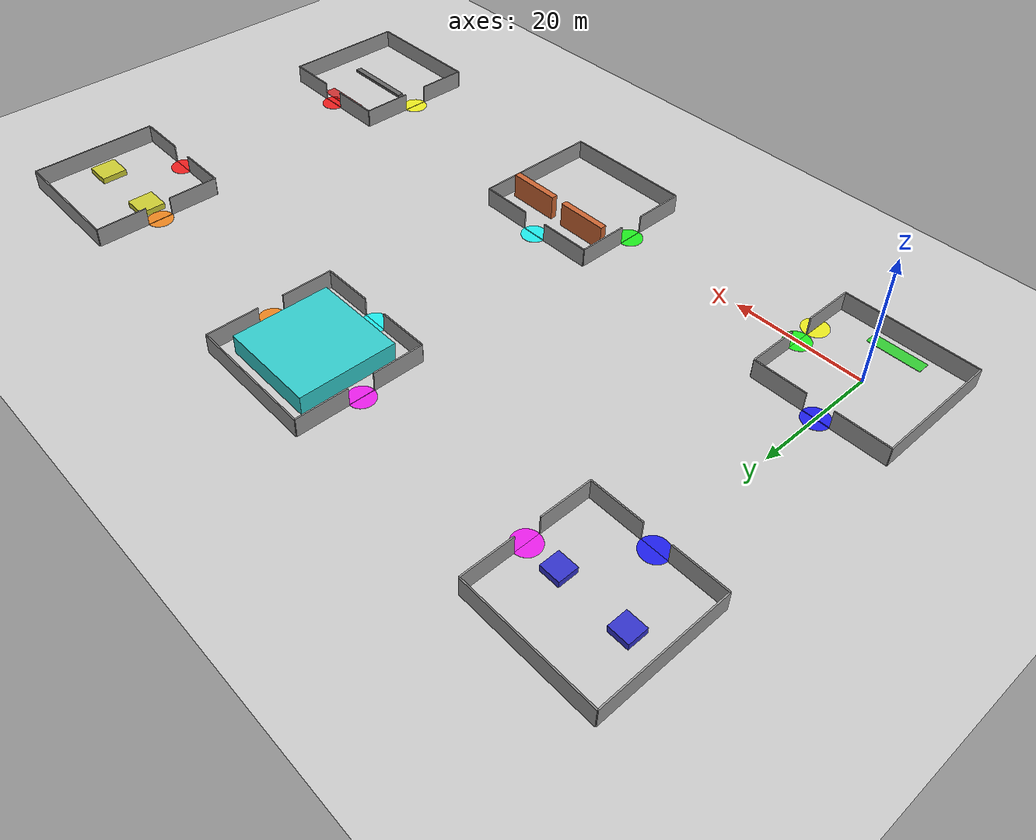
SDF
<?xml version="1.0" ?>
<sdf version="1.6">
  <world name="warehouse_distributed">
    <!-- Lighting -->
    <include>
      <uri>model://sun</uri>
    </include>

    <!-- Ground plane -->
    <include>
      <uri>model://ground_plane</uri>
    </include>

    <!-- Warehouse Room A - Receiving Area (0, 0) -->
    <model name="warehouse_room_a">
      <static>true</static>
      <pose>0 0 0 0 0 0</pose>
      <link name="floor">
        <collision name="floor_collision">
          <geometry>
            <box>
              <size>20 20 0.1</size>
            </box>
          </geometry>
        </collision>
        <visual name="floor_visual">
          <geometry>
            <box>
              <size>20 20 0.1</size>
            </box>
          </geometry>
          <material>
            <ambient>0.8 0.8 0.8 1</ambient>
            <diffuse>0.8 0.8 0.8 1</diffuse>
          </material>
        </visual>
      </link>

      <!-- Walls with gaps for wormholes -->
      <link name="wall_north_left">
        <collision name="wall_north_left_collision">
          <geometry>
            <box>
              <size>8 0.2 3</size>
            </box>
          </geometry>
        </collision>
        <visual name="wall_north_left_visual">
          <geometry>
            <box>
              <size>8 0.2 3</size>
            </box>
          </geometry>
          <material>
            <ambient>0.6 0.6 0.6 1</ambient>
            <diffuse>0.6 0.6 0.6 1</diffuse>
          </material>
        </visual>
        <pose>-6 10 1.5 0 0 0</pose>
      </link>

      <link name="wall_north_right">
        <collision name="wall_north_right_collision">
          <geometry>
            <box>
              <size>8 0.2 3</size>
            </box>
          </geometry>
        </collision>
        <visual name="wall_north_right_visual">
          <geometry>
            <box>
              <size>8 0.2 3</size>
            </box>
          </geometry>
          <material>
            <ambient>0.6 0.6 0.6 1</ambient>
            <diffuse>0.6 0.6 0.6 1</diffuse>
          </material>
        </visual>
        <pose>6 10 1.5 0 0 0</pose>
      </link>

      <link name="wall_south">
        <collision name="wall_south_collision">
          <geometry>
            <box>
              <size>20 0.2 3</size>
            </box>
          </geometry>
        </collision>
        <visual name="wall_south_visual">
          <geometry>
            <box>
              <size>20 0.2 3</size>
            </box>
          </geometry>
          <material>
            <ambient>0.6 0.6 0.6 1</ambient>
            <diffuse>0.6 0.6 0.6 1</diffuse>
          </material>
        </visual>
        <pose>0 -10 1.5 0 0 0</pose>
      </link>

      <link name="wall_east_top">
        <collision name="wall_east_top_collision">
          <geometry>
            <box>
              <size>0.2 8 3</size>
            </box>
          </geometry>
        </collision>
        <visual name="wall_east_top_visual">
          <geometry>
            <box>
              <size>0.2 8 3</size>
            </box>
          </geometry>
          <material>
            <ambient>0.6 0.6 0.6 1</ambient>
            <diffuse>0.6 0.6 0.6 1</diffuse>
          </material>
        </visual>
        <pose>10 6 1.5 0 0 0</pose>
      </link>

      <link name="wall_east_bottom">
        <collision name="wall_east_bottom_collision">
          <geometry>
            <box>
              <size>0.2 8 3</size>
            </box>
          </geometry>
        </collision>
        <visual name="wall_east_bottom_visual">
          <geometry>
            <box>
              <size>0.2 8 3</size>
            </box>
          </geometry>
          <material>
            <ambient>0.6 0.6 0.6 1</ambient>
            <diffuse>0.6 0.6 0.6 1</diffuse>
          </material>
        </visual>
        <pose>10 -6 1.5 0 0 0</pose>
      </link>

      <link name="wall_west">
        <collision name="wall_west_collision">
          <geometry>
            <box>
              <size>0.2 20 3</size>
            </box>
          </geometry>
        </collision>
        <visual name="wall_west_visual">
          <geometry>
            <box>
              <size>0.2 20 3</size>
            </box>
          </geometry>
          <material>
            <ambient>0.6 0.6 0.6 1</ambient>
            <diffuse>0.6 0.6 0.6 1</diffuse>
          </material>
        </visual>
        <pose>-10 0 1.5 0 0 0</pose>
      </link>

      <!-- Receiving dock -->
      <link name="receiving_dock">
        <collision name="receiving_dock_collision">
          <geometry>
            <box>
              <size>8 2 0.1</size>
            </box>
          </geometry>
        </collision>
        <visual name="receiving_dock_visual">
          <geometry>
            <box>
              <size>8 2 0.1</size>
            </box>
          </geometry>
          <material>
            <ambient>0.2 0.8 0.2 1</ambient>
            <diffuse>0.2 0.8 0.2 1</diffuse>
          </material>
        </visual>
        <pose>0 -8 0.05 0 0 0</pose>
      </link>
    </model>

    <!-- Warehouse Room B - Storage Area 1 (50, 0) -->
    <model name="warehouse_room_b">
      <static>true</static>
      <pose>50 0 0 0 0 0</pose>
      <link name="floor">
        <collision name="floor_collision">
          <geometry>
            <box>
              <size>20 20 0.1</size>
            </box>
          </geometry>
        </collision>
        <visual name="floor_visual">
          <geometry>
            <box>
              <size>20 20 0.1</size>
            </box>
          </geometry>
          <material>
            <ambient>0.8 0.8 0.8 1</ambient>
            <diffuse>0.8 0.8 0.8 1</diffuse>
          </material>
        </visual>
      </link>

      <!-- Walls with gaps for wormholes -->
      <link name="wall_north_left">
        <collision name="wall_north_left_collision">
          <geometry>
            <box>
              <size>8 0.2 3</size>
            </box>
          </geometry>
        </collision>
        <visual name="wall_north_left_visual">
          <geometry>
            <box>
              <size>8 0.2 3</size>
            </box>
          </geometry>
          <material>
            <ambient>0.6 0.6 0.6 1</ambient>
            <diffuse>0.6 0.6 0.6 1</diffuse>
          </material>
        </visual>
        <pose>-6 10 1.5 0 0 0</pose>
      </link>

      <link name="wall_north_right">
        <collision name="wall_north_right_collision">
          <geometry>
            <box>
              <size>8 0.2 3</size>
            </box>
          </geometry>
        </collision>
        <visual name="wall_north_right_visual">
          <geometry>
            <box>
              <size>8 0.2 3</size>
            </box>
          </geometry>
          <material>
            <ambient>0.6 0.6 0.6 1</ambient>
            <diffuse>0.6 0.6 0.6 1</diffuse>
          </material>
        </visual>
        <pose>6 10 1.5 0 0 0</pose>
      </link>

      <link name="wall_south">
        <collision name="wall_south_collision">
          <geometry>
            <box>
              <size>20 0.2 3</size>
            </box>
          </geometry>
        </collision>
        <visual name="wall_south_visual">
          <geometry>
            <box>
              <size>20 0.2 3</size>
            </box>
          </geometry>
          <material>
            <ambient>0.6 0.6 0.6 1</ambient>
            <diffuse>0.6 0.6 0.6 1</diffuse>
          </material>
        </visual>
        <pose>0 -10 1.5 0 0 0</pose>
      </link>

      <link name="wall_east">
        <collision name="wall_east_collision">
          <geometry>
            <box>
              <size>0.2 20 3</size>
            </box>
          </geometry>
        </collision>
        <visual name="wall_east_visual">
          <geometry>
            <box>
              <size>0.2 20 3</size>
            </box>
          </geometry>
          <material>
            <ambient>0.6 0.6 0.6 1</ambient>
            <diffuse>0.6 0.6 0.6 1</diffuse>
          </material>
        </visual>
        <pose>10 0 1.5 0 0 0</pose>
      </link>

      <link name="wall_west_top">
        <collision name="wall_west_top_collision">
          <geometry>
            <box>
              <size>0.2 8 3</size>
            </box>
          </geometry>
        </collision>
        <visual name="wall_west_top_visual">
          <geometry>
            <box>
              <size>0.2 8 3</size>
            </box>
          </geometry>
          <material>
            <ambient>0.6 0.6 0.6 1</ambient>
            <diffuse>0.6 0.6 0.6 1</diffuse>
          </material>
        </visual>
        <pose>-10 6 1.5 0 0 0</pose>
      </link>

      <link name="wall_west_bottom">
        <collision name="wall_west_bottom_collision">
          <geometry>
            <box>
              <size>0.2 8 3</size>
            </box>
          </geometry>
        </collision>
        <visual name="wall_west_bottom_visual">
          <geometry>
            <box>
              <size>0.2 8 3</size>
            </box>
          </geometry>
          <material>
            <ambient>0.6 0.6 0.6 1</ambient>
            <diffuse>0.6 0.6 0.6 1</diffuse>
          </material>
        </visual>
        <pose>-10 -6 1.5 0 0 0</pose>
      </link>

      <!-- Storage racks -->
      <link name="storage_rack_1">
        <collision name="storage_rack_1_collision">
          <geometry>
            <box>
              <size>8 1 4</size>
            </box>
          </geometry>
        </collision>
        <visual name="storage_rack_1_visual">
          <geometry>
            <box>
              <size>8 1 4</size>
            </box>
          </geometry>
          <material>
            <ambient>0.8 0.4 0.2 1</ambient>
            <diffuse>0.8 0.4 0.2 1</diffuse>
          </material>
        </visual>
        <pose>-5 5 2 0 0 0</pose>
      </link>

      <link name="storage_rack_2">
        <collision name="storage_rack_2_collision">
          <geometry>
            <box>
              <size>8 1 4</size>
            </box>
          </geometry>
        </collision>
        <visual name="storage_rack_2_visual">
          <geometry>
            <box>
              <size>8 1 4</size>
            </box>
          </geometry>
          <material>
            <ambient>0.8 0.4 0.2 1</ambient>
            <diffuse>0.8 0.4 0.2 1</diffuse>
          </material>
        </visual>
        <pose>5 5 2 0 0 0</pose>
      </link>
    </model>

    <!-- Warehouse Room C - Processing Area (0, 50) -->
    <model name="warehouse_room_c">
      <static>true</static>
      <pose>0 50 0 0 0 0</pose>
      <link name="floor">
        <collision name="floor_collision">
          <geometry>
            <box>
              <size>20 20 0.1</size>
            </box>
          </geometry>
        </collision>
        <visual name="floor_visual">
          <geometry>
            <box>
              <size>20 20 0.1</size>
            </box>
          </geometry>
          <material>
            <ambient>0.8 0.8 0.8 1</ambient>
            <diffuse>0.8 0.8 0.8 1</diffuse>
          </material>
        </visual>
      </link>

      <!-- Walls -->
      <link name="wall_north">
        <collision name="wall_north_collision">
          <geometry>
            <box>
              <size>20 0.2 3</size>
            </box>
          </geometry>
        </collision>
        <visual name="wall_north_visual">
          <geometry>
            <box>
              <size>20 0.2 3</size>
            </box>
          </geometry>
          <material>
            <ambient>0.6 0.6 0.6 1</ambient>
            <diffuse>0.6 0.6 0.6 1</diffuse>
          </material>
        </visual>
        <pose>0 10 1.5 0 0 0</pose>
      </link>

      <link name="wall_south_left">
        <collision name="wall_south_left_collision">
          <geometry>
            <box>
              <size>8 0.2 3</size>
            </box>
          </geometry>
        </collision>
        <visual name="wall_south_left_visual">
          <geometry>
            <box>
              <size>8 0.2 3</size>
            </box>
          </geometry>
          <material>
            <ambient>0.6 0.6 0.6 1</ambient>
            <diffuse>0.6 0.6 0.6 1</diffuse>
          </material>
        </visual>
        <pose>-6 -10 1.5 0 0 0</pose>
      </link>

      <link name="wall_south_right">
        <collision name="wall_south_right_collision">
          <geometry>
            <box>
              <size>8 0.2 3</size>
            </box>
          </geometry>
        </collision>
        <visual name="wall_south_right_visual">
          <geometry>
            <box>
              <size>8 0.2 3</size>
            </box>
          </geometry>
          <material>
            <ambient>0.6 0.6 0.6 1</ambient>
            <diffuse>0.6 0.6 0.6 1</diffuse>
          </material>
        </visual>
        <pose>6 -10 1.5 0 0 0</pose>
      </link>

      <link name="wall_east_top">
        <collision name="wall_east_top_collision">
          <geometry>
            <box>
              <size>0.2 8 3</size>
            </box>
          </geometry>
        </collision>
        <visual name="wall_east_top_visual">
          <geometry>
            <box>
              <size>0.2 8 3</size>
            </box>
          </geometry>
          <material>
            <ambient>0.6 0.6 0.6 1</ambient>
            <diffuse>0.6 0.6 0.6 1</diffuse>
          </material>
        </visual>
        <pose>10 6 1.5 0 0 0</pose>
      </link>

      <link name="wall_east_bottom">
        <collision name="wall_east_bottom_collision">
          <geometry>
            <box>
              <size>0.2 8 3</size>
            </box>
          </geometry>
        </collision>
        <visual name="wall_east_bottom_visual">
          <geometry>
            <box>
              <size>0.2 8 3</size>
            </box>
          </geometry>
          <material>
            <ambient>0.6 0.6 0.6 1</ambient>
            <diffuse>0.6 0.6 0.6 1</diffuse>
          </material>
        </visual>
        <pose>10 -6 1.5 0 0 0</pose>
      </link>

      <link name="wall_west">
        <collision name="wall_west_collision">
          <geometry>
            <box>
              <size>0.2 20 3</size>
            </box>
          </geometry>
        </collision>
        <visual name="wall_west_visual">
          <geometry>
            <box>
              <size>0.2 20 3</size>
            </box>
          </geometry>
          <material>
            <ambient>0.6 0.6 0.6 1</ambient>
            <diffuse>0.6 0.6 0.6 1</diffuse>
          </material>
        </visual>
        <pose>-10 0 1.5 0 0 0</pose>
      </link>

      <!-- Processing stations -->
      <link name="processing_station_1">
        <collision name="processing_station_1_collision">
          <geometry>
            <box>
              <size>3 3 1</size>
            </box>
          </geometry>
        </collision>
        <visual name="processing_station_1_visual">
          <geometry>
            <box>
              <size>3 3 1</size>
            </box>
          </geometry>
          <material>
            <ambient>0.2 0.2 0.8 1</ambient>
            <diffuse>0.2 0.2 0.8 1</diffuse>
          </material>
        </visual>
        <pose>-5 0 0.5 0 0 0</pose>
      </link>

      <link name="processing_station_2">
        <collision name="processing_station_2_collision">
          <geometry>
            <box>
              <size>3 3 1</size>
            </box>
          </geometry>
        </collision>
        <visual name="processing_station_2_visual">
          <geometry>
            <box>
              <size>3 3 1</size>
            </box>
          </geometry>
          <material>
            <ambient>0.2 0.2 0.8 1</ambient>
            <diffuse>0.2 0.2 0.8 1</diffuse>
          </material>
        </visual>
        <pose>5 0 0.5 0 0 0</pose>
      </link>
    </model>

    <!-- Warehouse Room D - Storage Area 2 (50, 50) -->
    <model name="warehouse_room_d">
      <static>true</static>
      <pose>50 50 0 0 0 0</pose>
      <link name="floor">
        <collision name="floor_collision">
          <geometry>
            <box>
              <size>20 20 0.1</size>
            </box>
          </geometry>
        </collision>
        <visual name="floor_visual">
          <geometry>
            <box>
              <size>20 20 0.1</size>
            </box>
          </geometry>
          <material>
            <ambient>0.8 0.8 0.8 1</ambient>
            <diffuse>0.8 0.8 0.8 1</diffuse>
          </material>
        </visual>
      </link>

      <!-- Walls with gaps for wormholes -->
      <link name="wall_north">
        <collision name="wall_north_collision">
          <geometry>
            <box>
              <size>20 0.2 3</size>
            </box>
          </geometry>
        </collision>
        <visual name="wall_north_visual">
          <geometry>
            <box>
              <size>20 0.2 3</size>
            </box>
          </geometry>
          <material>
            <ambient>0.6 0.6 0.6 1</ambient>
            <diffuse>0.6 0.6 0.6 1</diffuse>
          </material>
        </visual>
        <pose>0 10 1.5 0 0 0</pose>
      </link>

      <link name="wall_south_left">
        <collision name="wall_south_left_collision">
          <geometry>
            <box>
              <size>8 0.2 3</size>
            </box>
          </geometry>
        </collision>
        <visual name="wall_south_left_visual">
          <geometry>
            <box>
              <size>8 0.2 3</size>
            </box>
          </geometry>
          <material>
            <ambient>0.6 0.6 0.6 1</ambient>
            <diffuse>0.6 0.6 0.6 1</diffuse>
          </material>
        </visual>
        <pose>-6 -10 1.5 0 0 0</pose>
      </link>

      <link name="wall_south_right">
        <collision name="wall_south_right_collision">
          <geometry>
            <box>
              <size>8 0.2 3</size>
            </box>
          </geometry>
        </collision>
        <visual name="wall_south_right_visual">
          <geometry>
            <box>
              <size>8 0.2 3</size>
            </box>
          </geometry>
          <material>
            <ambient>0.6 0.6 0.6 1</ambient>
            <diffuse>0.6 0.6 0.6 1</diffuse>
          </material>
        </visual>
        <pose>6 -10 1.5 0 0 0</pose>
      </link>

      <link name="wall_east_top">
        <collision name="wall_east_top_collision">
          <geometry>
            <box>
              <size>0.2 8 3</size>
            </box>
          </geometry>
        </collision>
        <visual name="wall_east_top_visual">
          <geometry>
            <box>
              <size>0.2 8 3</size>
            </box>
          </geometry>
          <material>
            <ambient>0.6 0.6 0.6 1</ambient>
            <diffuse>0.6 0.6 0.6 1</diffuse>
          </material>
        </visual>
        <pose>10 6 1.5 0 0 0</pose>
      </link>

      <link name="wall_east_bottom">
        <collision name="wall_east_bottom_collision">
          <geometry>
            <box>
              <size>0.2 8 3</size>
            </box>
          </geometry>
        </collision>
        <visual name="wall_east_bottom_visual">
          <geometry>
            <box>
              <size>0.2 8 3</size>
            </box>
          </geometry>
          <material>
            <ambient>0.6 0.6 0.6 1</ambient>
            <diffuse>0.6 0.6 0.6 1</diffuse>
          </material>
        </visual>
        <pose>10 -6 1.5 0 0 0</pose>
      </link>

      <link name="wall_west_top">
        <collision name="wall_west_top_collision">
          <geometry>
            <box>
              <size>0.2 8 3</size>
            </box>
          </geometry>
        </collision>
        <visual name="wall_west_top_visual">
          <geometry>
            <box>
              <size>0.2 8 3</size>
            </box>
          </geometry>
          <material>
            <ambient>0.6 0.6 0.6 1</ambient>
            <diffuse>0.6 0.6 0.6 1</diffuse>
          </material>
        </visual>
        <pose>-10 6 1.5 0 0 0</pose>
      </link>

      <link name="wall_west_bottom">
        <collision name="wall_west_bottom_collision">
          <geometry>
            <box>
              <size>0.2 8 3</size>
            </box>
          </geometry>
        </collision>
        <visual name="wall_west_bottom_visual">
          <geometry>
            <box>
              <size>0.2 8 3</size>
            </box>
          </geometry>
          <material>
            <ambient>0.6 0.6 0.6 1</ambient>
            <diffuse>0.6 0.6 0.6 1</diffuse>
          </material>
        </visual>
        <pose>-10 -6 1.5 0 0 0</pose>
      </link>

      <!-- Cold storage -->
      <link name="cold_storage">
        <collision name="cold_storage_collision">
          <geometry>
            <box>
              <size>15 15 3</size>
            </box>
          </geometry>
        </collision>
        <visual name="cold_storage_visual">
          <geometry>
            <box>
              <size>15 15 3</size>
            </box>
          </geometry>
          <material>
            <ambient>0.2 0.8 0.8 1</ambient>
            <diffuse>0.2 0.8 0.8 1</diffuse>
          </material>
        </visual>
        <pose>0 0 1.5 0 0 0</pose>
      </link>
    </model>

    <!-- Warehouse Room E - Shipping Area (100, 0) -->
    <model name="warehouse_room_e">
      <static>true</static>
      <pose>100 0 0 0 0 0</pose>
      <link name="floor">
        <collision name="floor_collision">
          <geometry>
            <box>
              <size>20 20 0.1</size>
            </box>
          </geometry>
        </collision>
        <visual name="floor_visual">
          <geometry>
            <box>
              <size>20 20 0.1</size>
            </box>
          </geometry>
          <material>
            <ambient>0.8 0.8 0.8 1</ambient>
            <diffuse>0.8 0.8 0.8 1</diffuse>
          </material>
        </visual>
      </link>

      <!-- Walls with gaps for wormholes -->
      <link name="wall_north_left">
        <collision name="wall_north_left_collision">
          <geometry>
            <box>
              <size>8 0.2 3</size>
            </box>
          </geometry>
        </collision>
        <visual name="wall_north_left_visual">
          <geometry>
            <box>
              <size>8 0.2 3</size>
            </box>
          </geometry>
          <material>
            <ambient>0.6 0.6 0.6 1</ambient>
            <diffuse>0.6 0.6 0.6 1</diffuse>
          </material>
        </visual>
        <pose>-6 10 1.5 0 0 0</pose>
      </link>

      <link name="wall_north_right">
        <collision name="wall_north_right_collision">
          <geometry>
            <box>
              <size>8 0.2 3</size>
            </box>
          </geometry>
        </collision>
        <visual name="wall_north_right_visual">
          <geometry>
            <box>
              <size>8 0.2 3</size>
            </box>
          </geometry>
          <material>
            <ambient>0.6 0.6 0.6 1</ambient>
            <diffuse>0.6 0.6 0.6 1</diffuse>
          </material>
        </visual>
        <pose>6 10 1.5 0 0 0</pose>
      </link>

      <link name="wall_south">
        <collision name="wall_south_collision">
          <geometry>
            <box>
              <size>20 0.2 3</size>
            </box>
          </geometry>
        </collision>
        <visual name="wall_south_visual">
          <geometry>
            <box>
              <size>20 0.2 3</size>
            </box>
          </geometry>
          <material>
            <ambient>0.6 0.6 0.6 1</ambient>
            <diffuse>0.6 0.6 0.6 1</diffuse>
          </material>
        </visual>
        <pose>0 -10 1.5 0 0 0</pose>
      </link>

      <link name="wall_east">
        <collision name="wall_east_collision">
          <geometry>
            <box>
              <size>0.2 20 3</size>
            </box>
          </geometry>
        </collision>
        <visual name="wall_east_visual">
          <geometry>
            <box>
              <size>0.2 20 3</size>
            </box>
          </geometry>
          <material>
            <ambient>0.6 0.6 0.6 1</ambient>
            <diffuse>0.6 0.6 0.6 1</diffuse>
          </material>
        </visual>
        <pose>10 0 1.5 0 0 0</pose>
      </link>

      <link name="wall_west_top">
        <collision name="wall_west_top_collision">
          <geometry>
            <box>
              <size>0.2 8 3</size>
            </box>
          </geometry>
        </collision>
        <visual name="wall_west_top_visual">
          <geometry>
            <box>
              <size>0.2 8 3</size>
            </box>
          </geometry>
          <material>
            <ambient>0.6 0.6 0.6 1</ambient>
            <diffuse>0.6 0.6 0.6 1</diffuse>
          </material>
        </visual>
        <pose>-10 6 1.5 0 0 0</pose>
      </link>

      <link name="wall_west_bottom">
        <collision name="wall_west_bottom_collision">
          <geometry>
            <box>
              <size>0.2 8 3</size>
            </box>
          </geometry>
        </collision>
        <visual name="wall_west_bottom_visual">
          <geometry>
            <box>
              <size>0.2 8 3</size>
            </box>
          </geometry>
          <material>
            <ambient>0.6 0.6 0.6 1</ambient>
            <diffuse>0.6 0.6 0.6 1</diffuse>
          </material>
        </visual>
        <pose>-10 -6 1.5 0 0 0</pose>
      </link>

      <!-- Shipping dock -->
      <link name="shipping_dock">
        <collision name="shipping_dock_collision">
          <geometry>
            <box>
              <size>8 2 0.1</size>
            </box>
          </geometry>
        </collision>
        <visual name="shipping_dock_visual">
          <geometry>
            <box>
              <size>8 2 0.1</size>
            </box>
          </geometry>
          <material>
            <ambient>0.8 0.2 0.2 1</ambient>
            <diffuse>0.8 0.2 0.2 1</diffuse>
          </material>
        </visual>
        <pose>0 8 0.05 0 0 0</pose>
      </link>

      <!-- Loading conveyor -->
      <link name="loading_conveyor">
        <collision name="loading_conveyor_collision">
          <geometry>
            <box>
              <size>12 1 0.5</size>
            </box>
          </geometry>
        </collision>
        <visual name="loading_conveyor_visual">
          <geometry>
            <box>
              <size>12 1 0.5</size>
            </box>
          </geometry>
          <material>
            <ambient>0.4 0.4 0.4 1</ambient>
            <diffuse>0.4 0.4 0.4 1</diffuse>
          </material>
        </visual>
        <pose>0 0 0.25 0 0 0</pose>
      </link>
    </model>

    <!-- Warehouse Room F - Quality Control (100, 50) -->
    <model name="warehouse_room_f">
      <static>true</static>
      <pose>100 50 0 0 0 0</pose>
      <link name="floor">
        <collision name="floor_collision">
          <geometry>
            <box>
              <size>20 20 0.1</size>
            </box>
          </geometry>
        </collision>
        <visual name="floor_visual">
          <geometry>
            <box>
              <size>20 20 0.1</size>
            </box>
          </geometry>
          <material>
            <ambient>0.8 0.8 0.8 1</ambient>
            <diffuse>0.8 0.8 0.8 1</diffuse>
          </material>
        </visual>
      </link>

      <!-- Walls with gaps for wormholes -->
      <link name="wall_north">
        <collision name="wall_north_collision">
          <geometry>
            <box>
              <size>20 0.2 3</size>
            </box>
          </geometry>
        </collision>
        <visual name="wall_north_visual">
          <geometry>
            <box>
              <size>20 0.2 3</size>
            </box>
          </geometry>
          <material>
            <ambient>0.6 0.6 0.6 1</ambient>
            <diffuse>0.6 0.6 0.6 1</diffuse>
          </material>
        </visual>
        <pose>0 10 1.5 0 0 0</pose>
      </link>

      <link name="wall_south_left">
        <collision name="wall_south_left_collision">
          <geometry>
            <box>
              <size>8 0.2 3</size>
            </box>
          </geometry>
        </collision>
        <visual name="wall_south_left_visual">
          <geometry>
            <box>
              <size>8 0.2 3</size>
            </box>
          </geometry>
          <material>
            <ambient>0.6 0.6 0.6 1</ambient>
            <diffuse>0.6 0.6 0.6 1</diffuse>
          </material>
        </visual>
        <pose>-6 -10 1.5 0 0 0</pose>
      </link>

      <link name="wall_south_right">
        <collision name="wall_south_right_collision">
          <geometry>
            <box>
              <size>8 0.2 3</size>
            </box>
          </geometry>
        </collision>
        <visual name="wall_south_right_visual">
          <geometry>
            <box>
              <size>8 0.2 3</size>
            </box>
          </geometry>
          <material>
            <ambient>0.6 0.6 0.6 1</ambient>
            <diffuse>0.6 0.6 0.6 1</diffuse>
          </material>
        </visual>
        <pose>6 -10 1.5 0 0 0</pose>
      </link>

      <link name="wall_east">
        <collision name="wall_east_collision">
          <geometry>
            <box>
              <size>0.2 20 3</size>
            </box>
          </geometry>
        </collision>
        <visual name="wall_east_visual">
          <geometry>
            <box>
              <size>0.2 20 3</size>
            </box>
          </geometry>
          <material>
            <ambient>0.6 0.6 0.6 1</ambient>
            <diffuse>0.6 0.6 0.6 1</diffuse>
          </material>
        </visual>
        <pose>10 0 1.5 0 0 0</pose>
      </link>

      <link name="wall_west_top">
        <collision name="wall_west_top_collision">
          <geometry>
            <box>
              <size>0.2 8 3</size>
            </box>
          </geometry>
        </collision>
        <visual name="wall_west_top_visual">
          <geometry>
            <box>
              <size>0.2 8 3</size>
            </box>
          </geometry>
          <material>
            <ambient>0.6 0.6 0.6 1</ambient>
            <diffuse>0.6 0.6 0.6 1</diffuse>
          </material>
        </visual>
        <pose>-10 6 1.5 0 0 0</pose>
      </link>

      <link name="wall_west_bottom">
        <collision name="wall_west_bottom_collision">
          <geometry>
            <box>
              <size>0.2 8 3</size>
            </box>
          </geometry>
        </collision>
        <visual name="wall_west_bottom_visual">
          <geometry>
            <box>
              <size>0.2 8 3</size>
            </box>
          </geometry>
          <material>
            <ambient>0.6 0.6 0.6 1</ambient>
            <diffuse>0.6 0.6 0.6 1</diffuse>
          </material>
        </visual>
        <pose>-10 -6 1.5 0 0 0</pose>
      </link>

      <!-- Quality control stations -->
      <link name="qc_station_1">
        <collision name="qc_station_1_collision">
          <geometry>
            <box>
              <size>4 4 1</size>
            </box>
          </geometry>
        </collision>
        <visual name="qc_station_1_visual">
          <geometry>
            <box>
              <size>4 4 1</size>
            </box>
          </geometry>
          <material>
            <ambient>0.8 0.8 0.2 1</ambient>
            <diffuse>0.8 0.8 0.2 1</diffuse>
          </material>
        </visual>
        <pose>-6 0 0.5 0 0 0</pose>
      </link>

      <link name="qc_station_2">
        <collision name="qc_station_2_collision">
          <geometry>
            <box>
              <size>4 4 1</size>
            </box>
          </geometry>
        </collision>
        <visual name="qc_station_2_visual">
          <geometry>
            <box>
              <size>4 4 1</size>
            </box>
          </geometry>
          <material>
            <ambient>0.8 0.8 0.2 1</ambient>
            <diffuse>0.8 0.8 0.2 1</diffuse>
          </material>
        </visual>
        <pose>6 0 0.5 0 0 0</pose>
      </link>
    </model>

    <!-- WORMHOLE VISUAL MARKERS -->

    <!-- A->B Wormhole (Green) -->
    <model name="wormhole_a_to_b">
      <pose>10 0 0.05 0 0 0</pose>
      <static>true</static>
      <link name="marker">
        <visual name="visual">
          <geometry>
            <cylinder>
              <radius>2.0</radius>
              <length>0.1</length>
            </cylinder>
          </geometry>
          <material>
            <ambient>0 1 0 0.8</ambient>
            <diffuse>0 1 0 0.8</diffuse>
            <specular>0 1 0 0.8</specular>
          </material>
        </visual>
      </link>
    </model>

    <!-- B->A Wormhole (Green) -->
    <model name="wormhole_b_to_a">
      <pose>40 0 0.05 0 0 0</pose>
      <static>true</static>
      <link name="marker">
        <visual name="visual">
          <geometry>
            <cylinder>
              <radius>2.0</radius>
              <length>0.1</length>
            </cylinder>
          </geometry>
          <material>
            <ambient>0 1 0 0.8</ambient>
            <diffuse>0 1 0 0.8</diffuse>
            <specular>0 1 0 0.8</specular>
          </material>
        </visual>
      </link>
    </model>

    <!-- A->C Wormhole (Blue) -->
    <model name="wormhole_a_to_c">
      <pose>0 10 0.05 0 0 0</pose>
      <static>true</static>
      <link name="marker">
        <visual name="visual">
          <geometry>
            <cylinder>
              <radius>2.0</radius>
              <length>0.1</length>
            </cylinder>
          </geometry>
          <material>
            <ambient>0 0 1 0.8</ambient>
            <diffuse>0 0 1 0.8</diffuse>
            <specular>0 0 1 0.8</specular>
          </material>
        </visual>
      </link>
    </model>

    <!-- C->A Wormhole (Blue) -->
    <model name="wormhole_c_to_a">
      <pose>0 40 0.05 0 0 0</pose>
      <static>true</static>
      <link name="marker">
        <visual name="visual">
          <geometry>
            <cylinder>
              <radius>2.0</radius>
              <length>0.1</length>
            </cylinder>
          </geometry>
          <material>
            <ambient>0 0 1 0.8</ambient>
            <diffuse>0 0 1 0.8</diffuse>
            <specular>0 0 1 0.8</specular>
          </material>
        </visual>
      </link>
    </model>

    <!-- B->D Wormhole (Cyan) -->
    <model name="wormhole_b_to_d">
      <pose>50 10 0.05 0 0 0</pose>
      <static>true</static>
      <link name="marker">
        <visual name="visual">
          <geometry>
            <cylinder>
              <radius>2.0</radius>
              <length>0.1</length>
            </cylinder>
          </geometry>
          <material>
            <ambient>0 1 1 0.8</ambient>
            <diffuse>0 1 1 0.8</diffuse>
            <specular>0 1 1 0.8</specular>
          </material>
        </visual>
      </link>
    </model>

    <!-- D->B Wormhole (Cyan) -->
    <model name="wormhole_d_to_b">
      <pose>50 40 0.05 0 0 0</pose>
      <static>true</static>
      <link name="marker">
        <visual name="visual">
          <geometry>
            <cylinder>
              <radius>2.0</radius>
              <length>0.1</length>
            </cylinder>
          </geometry>
          <material>
            <ambient>0 1 1 0.8</ambient>
            <diffuse>0 1 1 0.8</diffuse>
            <specular>0 1 1 0.8</specular>
          </material>
        </visual>
      </link>
    </model>

    <!-- C->D Wormhole (Magenta) -->
    <model name="wormhole_c_to_d">
      <pose>10 50 0.05 0 0 0</pose>
      <static>true</static>
      <link name="marker">
        <visual name="visual">
          <geometry>
            <cylinder>
              <radius>2.0</radius>
              <length>0.1</length>
            </cylinder>
          </geometry>
          <material>
            <ambient>1 0 1 0.8</ambient>
            <diffuse>1 0 1 0.8</diffuse>
            <specular>1 0 1 0.8</specular>
          </material>
        </visual>
      </link>
    </model>

    <!-- D->C Wormhole (Magenta) -->
    <model name="wormhole_d_to_c">
      <pose>40 50 0.05 0 0 0</pose>
      <static>true</static>
      <link name="marker">
        <visual name="visual">
          <geometry>
            <cylinder>
              <radius>2.0</radius>
              <length>0.1</length>
            </cylinder>
          </geometry>
          <material>
            <ambient>1 0 1 0.8</ambient>
            <diffuse>1 0 1 0.8</diffuse>
            <specular>1 0 1 0.8</specular>
          </material>
        </visual>
      </link>
    </model>

    <!-- A->E Wormhole (Yellow) -->
    <model name="wormhole_a_to_e">
      <pose>10 -4 0.05 0 0 0</pose>
      <static>true</static>
      <link name="marker">
        <visual name="visual">
          <geometry>
            <cylinder>
              <radius>2.0</radius>
              <length>0.1</length>
            </cylinder>
          </geometry>
          <material>
            <ambient>1 1 0 0.8</ambient>
            <diffuse>1 1 0 0.8</diffuse>
            <specular>1 1 0 0.8</specular>
          </material>
        </visual>
      </link>
    </model>

    <!-- E->A Wormhole (Yellow) -->
    <model name="wormhole_e_to_a">
      <pose>90 0 0.05 0 0 0</pose>
      <static>true</static>
      <link name="marker">
        <visual name="visual">
          <geometry>
            <cylinder>
              <radius>2.0</radius>
              <length>0.1</length>
            </cylinder>
          </geometry>
          <material>
            <ambient>1 1 0 0.8</ambient>
            <diffuse>1 1 0 0.8</diffuse>
            <specular>1 1 0 0.8</specular>
          </material>
        </visual>
      </link>
    </model>

    <!-- D->F Wormhole (Orange) -->
    <model name="wormhole_d_to_f">
      <pose>60 50 0.05 0 0 0</pose>
      <static>true</static>
      <link name="marker">
        <visual name="visual">
          <geometry>
            <cylinder>
              <radius>2.0</radius>
              <length>0.1</length>
            </cylinder>
          </geometry>
          <material>
            <ambient>1 0.5 0 0.8</ambient>
            <diffuse>1 0.5 0 0.8</diffuse>
            <specular>1 0.5 0 0.8</specular>
          </material>
        </visual>
      </link>
    </model>

    <!-- F->D Wormhole (Orange) -->
    <model name="wormhole_f_to_d">
      <pose>90 50 0.05 0 0 0</pose>
      <static>true</static>
      <link name="marker">
        <visual name="visual">
          <geometry>
            <cylinder>
              <radius>2.0</radius>
              <length>0.1</length>
            </cylinder>
          </geometry>
          <material>
            <ambient>1 0.5 0 0.8</ambient>
            <diffuse>1 0.5 0 0.8</diffuse>
            <specular>1 0.5 0 0.8</specular>
          </material>
        </visual>
      </link>
    </model>

    <!-- E->F Wormhole (Red) -->
    <model name="wormhole_e_to_f">
      <pose>100 10 0.05 0 0 0</pose>
      <static>true</static>
      <link name="marker">
        <visual name="visual">
          <geometry>
            <cylinder>
              <radius>2.0</radius>
              <length>0.1</length>
            </cylinder>
          </geometry>
          <material>
            <ambient>1 0 0 0.8</ambient>
            <diffuse>1 0 0 0.8</diffuse>
            <specular>1 0 0 0.8</specular>
          </material>
        </visual>
      </link>
    </model>

    <!-- F->E Wormhole (Red) -->
    <model name="wormhole_f_to_e">
      <pose>100 40 0.05 0 0 0</pose>
      <static>true</static>
      <link name="marker">
        <visual name="visual">
          <geometry>
            <cylinder>
              <radius>2.0</radius>
              <length>0.1</length>
            </cylinder>
          </geometry>
          <material>
            <ambient>1 0 0 0.8</ambient>
            <diffuse>1 0 0 0.8</diffuse>
            <specular>1 0 0 0.8</specular>
          </material>
        </visual>
      </link>
    </model>

    <!-- Physics -->
    <physics type="ode">
      <max_step_size>0.001</max_step_size>
      <real_time_factor>1</real_time_factor>
      <real_time_update_rate>1000</real_time_update_rate>
      <gravity>0 0 -9.81</gravity>
    </physics>

    <!-- GUI -->
    <gui fullscreen='0'>
      <camera name='user_camera'>
        <pose>50 25 80 0 1.5708 0</pose>
        <view_controller>orbit</view_controller>
      </camera>
    </gui>
  </world>
</sdf>
